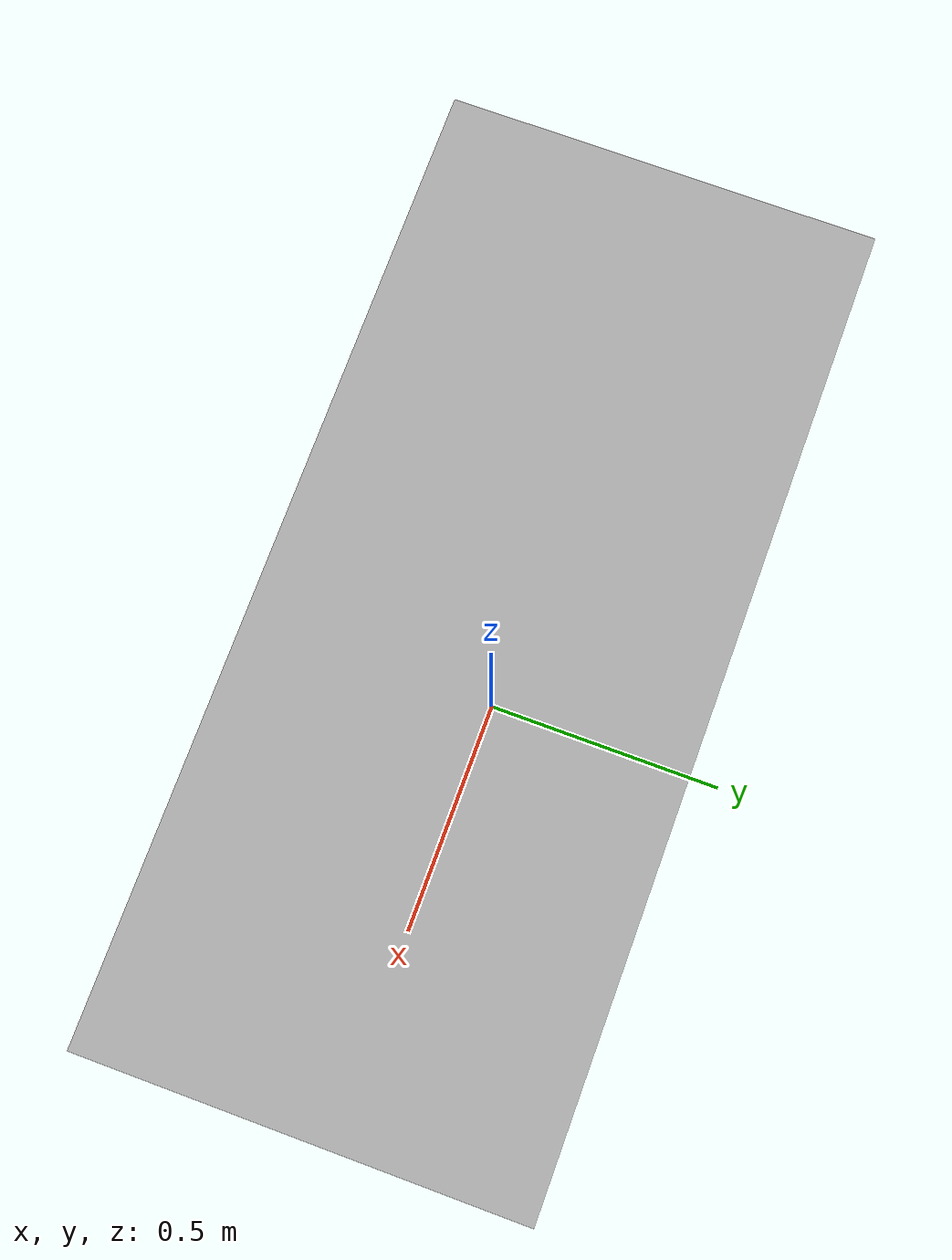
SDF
<?xml version="1.0" ?>

<sdf version="1.5">
  <model name="BigTable">
    <static>true</static>
    <link name="BigTable">
      <collision name="collision">
	<geometry>
            <mesh>
	      <uri>model://BigTable/BigTable.dae</uri>
	    </mesh>
          </geometry>
      </collision>
      <visual name="vis">
        <cast_shadows>false</cast_shadows>
	<geometry>
            <mesh>
	      <uri>model://BigTable/BigTable.dae</uri>
	    </mesh>
          </geometry>
      </visual>
    </link>
  </model>
</sdf>
